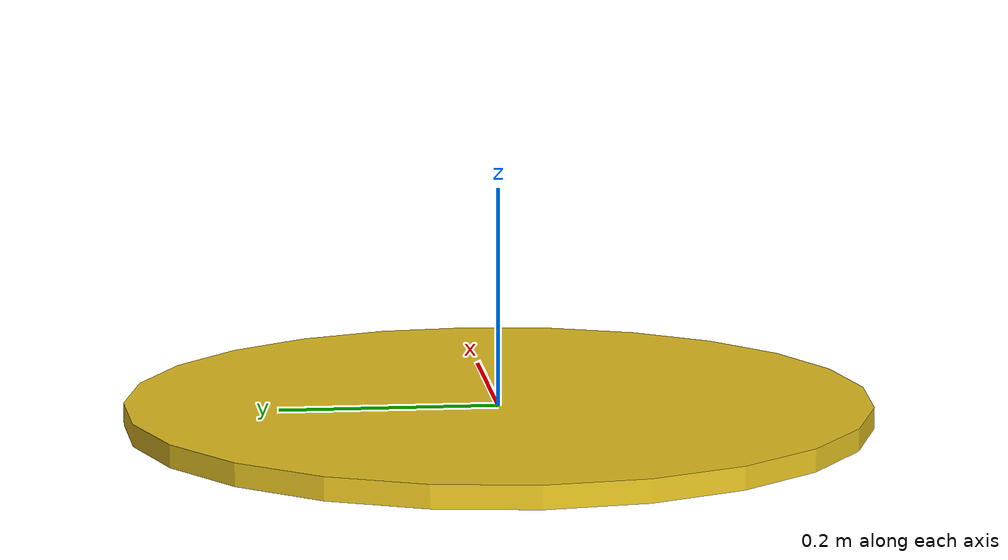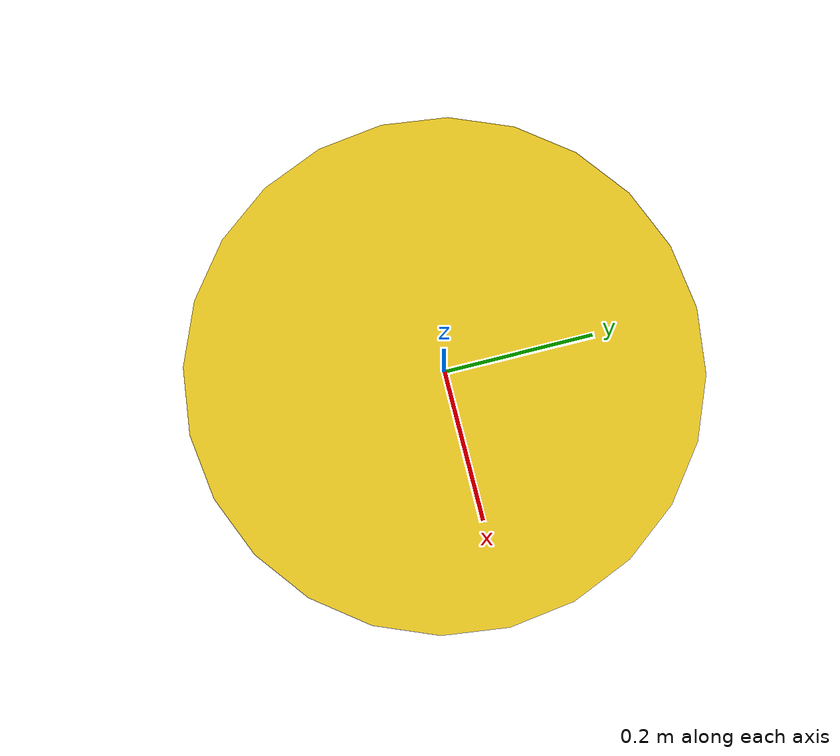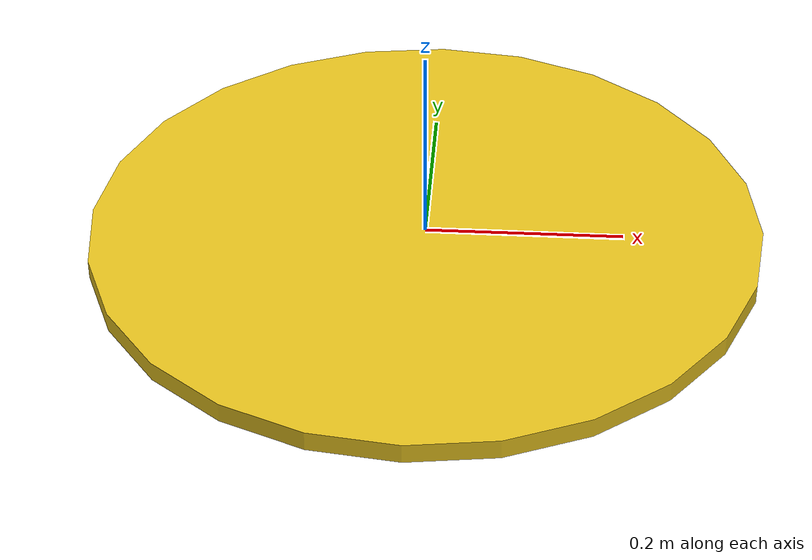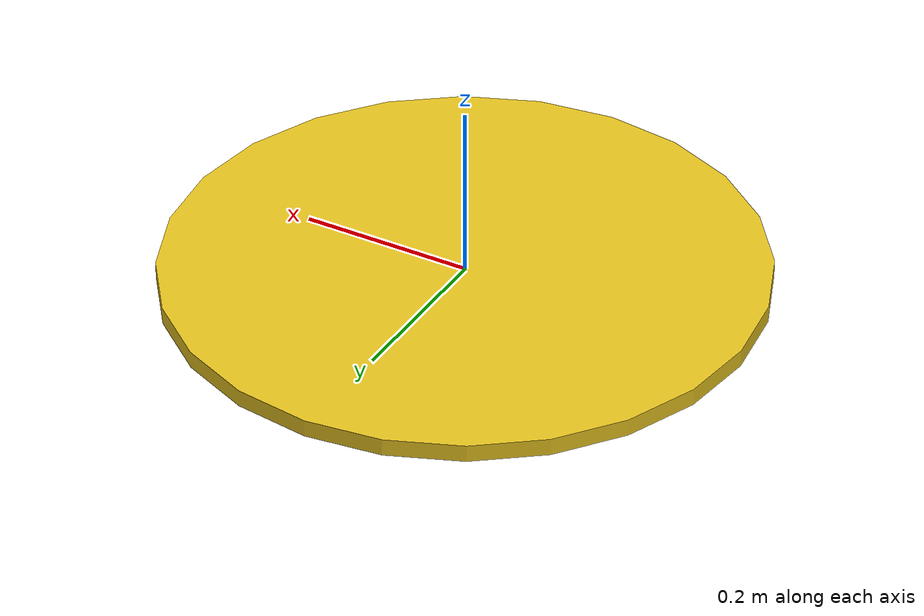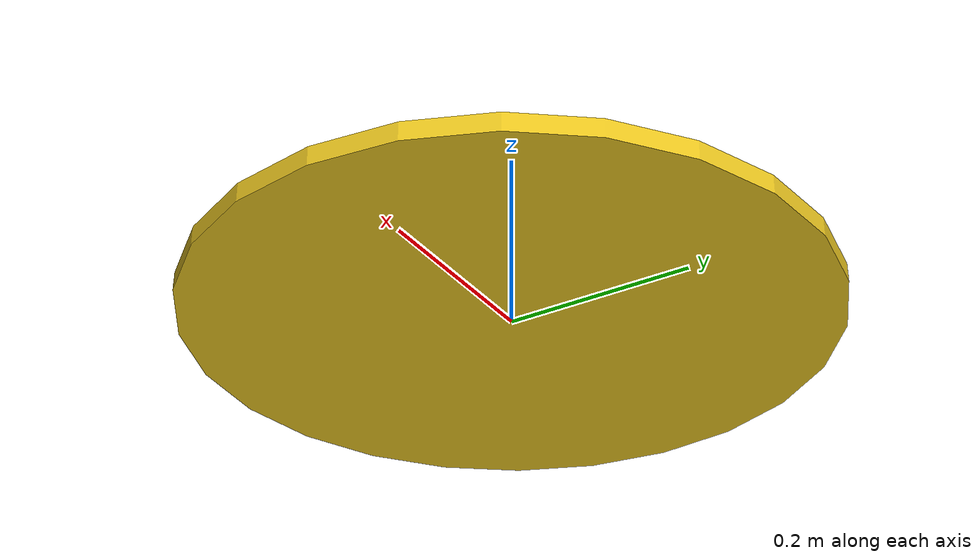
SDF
<?xml version="1.0"?>
<sdf version="1.9">
  <model name="leaf_pile_01"><static>true</static><link name="link">
    <visual name="visual"><geometry><cylinder><radius>0.34</radius><length>0.02</length></cylinder></geometry><material><ambient>0.86 0.72 0.12 1</ambient><diffuse>0.90 0.76 0.12 1</diffuse></material></visual>
  </link></model>
</sdf>
